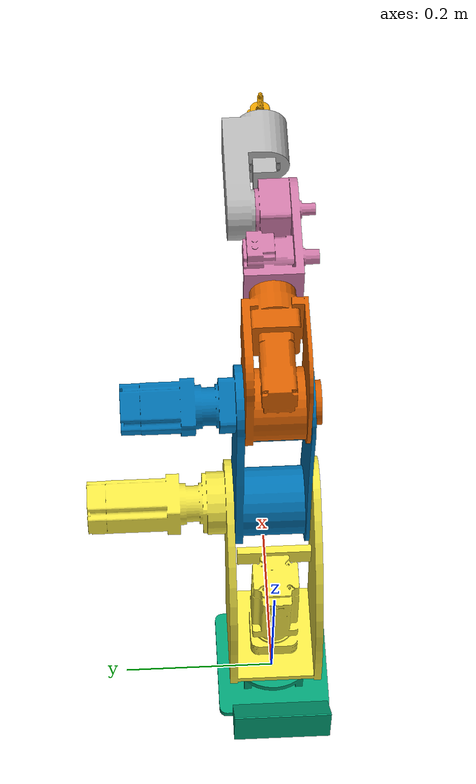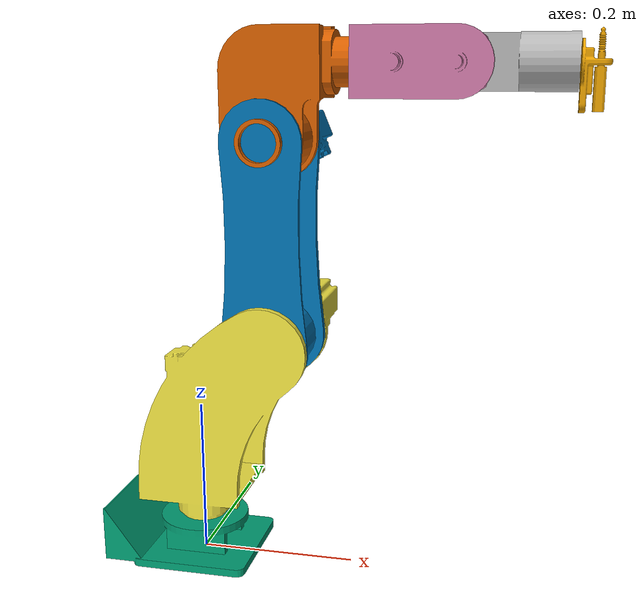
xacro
<?xml version="1.0"?>
<robot name="robot" xmlns:xacro="http://www.ros.org/wiki/xacro">

  <!-- ________________ DEFINE LINK ________________________________________________________________________ -->
  <!-- World Frame -->
  <link name  ="world"/>
  <link name  ="tcp_link"/>
  <!-- Link 0 - Base -->
  <link name  ="base_link">
    <inertial>
      <origin xyz ="-0.00544954615598158 0.000157418519134474 0.00564099250157026" rpy="0 0 0" />
      <mass value ="1.78696933370067" />
      <inertia
              ixx ="0.00334289861376234"
              ixy ="-2.39019225970563E-07"
              ixz ="7.11788112309683E-06"
              iyy ="0.0031863560397784"
              iyz ="-2.78684112590384E-06"
              izz ="0.00645191220467659" />
    </inertial>
    <visual>
      <origin xyz ="0 0 0" rpy  ="0 0 0" />
      <geometry>
        <mesh filename  ="package://robot_description/meshes/base_link.stl" />
      </geometry>
      <material   name  ="base_link"></material>
    </visual>
    <collision>
      <origin xyz ="0 0 0" rpy ="0 0 0" />
      <geometry>
        <mesh filename  ="package://robot_description/meshes/dae/base_link.dae" />
      </geometry>
    </collision>
  </link>
  <!-- Link 1 -->
  <link name  ="link_1">
    <inertial>
      <origin   xyz  ="0.0193443558112907 0.0109921802765565 0.0924758072620357" rpy="0 0 0" />
      <mass   value  ="5.50396042361908" />
      <inertia
                ixx ="0.0130037829993516"
                ixy ="3.49214734799824E-09"
                ixz ="-0.00313572650782407"
                iyy ="0.0174211851360363"
                iyz ="-2.33013746145458E-06"
                izz ="0.0140359346087906" />
    </inertial>
    <visual>
      <origin xyz ="0 0 0" rpy  ="0 0 0" />
      <geometry>
        <mesh filename  ="package://robot_description/meshes/link_1.stl" />
      </geometry>
      <material   name  ="link_1"></material>
    </visual>
    <collision>
      <origin xyz ="0 0 0" rpy ="0 0 0" />
      <geometry>
        <mesh filename  ="package://robot_description/meshes/dae/link_1.dae" />
      </geometry>
    </collision>
  </link>
    <!-- Link 2 -->
  <link name="link_2">
    <inertial>
      <origin xyz ="0.095965941991434 0.000112006139674839 -0.0319594915411429"  rpy="0 0 0" />
      <mass value ="2.68614147040981" />
      <inertia
              ixx ="0.00216208190226954"
              ixy ="7.03906699411074E-07"
              ixz ="1.9470092472916E-06"
              iyy ="0.0110452906557092"
              iyz ="-1.43932327786374E-06"
              izz ="0.0125902837214324" />
    </inertial>
    <visual>
      <origin xyz="0 0 0" rpy="0 0 0" />
      <geometry>
        <mesh   filename ="package://robot_description/meshes/link_2.stl" />
      </geometry>
      <material     name  ="link_2"></material>
    </visual>
    <collision>
      <origin xyz ="0 0 0" rpy ="0 0 0" />
      <geometry>
        <mesh filename  ="package://robot_description/meshes/dae/link_2.dae" />
      </geometry>
    </collision>
  </link>
    <!-- Link 3 -->
  <link  name="link_3">
    <inertial>
      <origin xyz ="0.0315400667409967 -0.0522316930638639 -0.0372996788949479" rpy="0 0 0" />
      <mass value ="2.69379315969066" />
      <inertia
              ixx ="0.00297065150537785"
              ixy ="0.000173737882412212"
              ixz ="1.08004336423003E-07"
              iyy ="0.0019143128411473"
              iyz ="4.2036787275891E-06"
              izz ="0.0039181139326064" />
    </inertial>
    <visual>
      <origin  xyz="0 0 0" rpy="0 0 0" />
      <geometry>
        <mesh  filename="package://robot_description/meshes/link_3.stl" />
      </geometry>
      <material name="link_3"></material>
    </visual>
    <collision>
      <origin xyz ="0 0 0" rpy ="0 0 0" />
      <geometry>
        <mesh filename  ="package://robot_description/meshes/dae/link_3.dae" />
      </geometry>
    </collision>
  </link>
    <!-- Link 4 -->
  <link  name="link_4">
    <inertial>
      <origin xyz ="0.00868566509472264 -0.000351062944789704 0.0358084533663054" rpy="0 0 0" />
      <mass value ="1.80796623919651" />
      <inertia
              ixx ="0.00163140667717977"
              ixy ="-1.5364988555156E-06"
              ixz ="-1.21111109518308E-05"
              iyy ="0.00126669781876782"
              iyz ="-8.97475562349671E-07"
              izz ="0.0010711724867268" />
    </inertial>
    <visual>
      <origin xyz="0 0 0"  rpy="0 0 0" />
      <geometry>
        <mesh filename="package://robot_description/meshes/link_4.stl" />
      </geometry>
      <material name="link_4"></material>
    </visual>
    <collision>
      <origin xyz ="0 0 0" rpy ="0 0 0" />
      <geometry>
        <mesh filename  ="package://robot_description/meshes/dae/link_4.dae" />
      </geometry>
    </collision>
  </link>
    <!-- Link 5 -->
  <link  name="link_5">
    <inertial>
      <origin xyz ="0.0674634334441427 5.73631023903509E-05 0.00771105147453628" rpy="0 0 0" />
      <mass value ="0.367372399298886" />
      <inertia
              ixx ="0.000203467788892474"
              ixy ="-4.31988988741858E-07"
              ixz ="-2.92876701433074E-05"
              iyy ="0.000404007801086554"
              iyz ="-9.06114097030996E-09"
              izz ="0.000453819777422173" />
    </inertial>
    <visual>
      <origin xyz="0 0 0" rpy="0 0 0" />
      <geometry>
        <mesh filename  ="package://robot_description/meshes/link_5.stl" />
      </geometry>
      <material   name  ="link_5"></material>
    </visual>
    <collision>
      <origin xyz ="0 0 0" rpy ="0 0 0" />
      <geometry>
        <mesh filename  ="package://robot_description/meshes/dae/link_5.dae" />
      </geometry>
    </collision>
  </link>
    <!-- Link 6 -->
  <link  name="link_6">
    <inertial>
      <origin xyz ="-3.2560015697054E-06 -3.69429945190625E-07 -0.000227999228200271" rpy="0 0 0" />
      <mass value ="0.0760881236172958" />
      <inertia
              ixx ="1.0689375645495E-05"
              ixy ="1.29742190426518E-07"
              ixz ="-4.13087402822219E-09"
              iyy ="6.01775641263719E-05"
              iyz ="-8.47409888919864E-11"
              izz ="6.20472722814015E-05" />
    </inertial>
    <visual>
      <origin xyz ="0 0 0" rpy  ="0 0 ${pi}" />
      <geometry>
        <mesh filename  ="package://robot_description/meshes/tcp_xy.stl" />
      </geometry>
      <material   name  ="tool_flange"></material>
    </visual>
    <collision>
      <origin xyz ="0 0 0" rpy ="0 0 0" />
      <geometry>
        <mesh filename  ="package://robot_description/meshes/tcp_xy.stl" />
      </geometry>
    </collision>
  </link>
      <!-- gripper_l -->
  <link
    name="gripper_l">
    <inertial>
      <origin xyz ="0.00529765879587146 -3.88578058618805E-15 0.0107662645329267"  rpy="0 0 0" />
      <mass value ="0.00341226263656414" />
      <inertia
              ixx ="2.87010460865535E-07"
              ixy ="-2.57160585374973E-20"
              ixz ="5.98935002113914E-08"
              iyy ="2.9830566445971E-07"
              iyz ="3.31197444456193E-19"
              izz ="1.33685846407215E-07" />
    </inertial>
    <visual>
      <origin xyz ="0 0 0" rpy  ="0 0 0" />
      <geometry>
        <mesh filename  ="package://robot_description/meshes/gripper_l.stl" />
      </geometry>
      <material   name  ="gripper_l"></material>
    </visual>
    <collision>
      <origin xyz ="0 0 0" rpy ="0 0 0" />
      <geometry>
        <mesh filename  ="package://robot_description/meshes/dae/gripper_l.dae" />
      </geometry>
    </collision>
  </link>
    <!-- gripper_r -->
  <link name="gripper_r">
    <inertial>
      <origin xyz ="0.00529765879587152 -3.88578058618805E-15 0.0107662645329266" rpy="0 0 0" />
      <mass value ="0.00341226263656414" />
      <inertia
              ixx ="2.87010460865533E-07"
              ixy ="-2.59872111438333E-20"
              ixz ="5.98935002113914E-08"
              iyy ="2.98305664459708E-07"
              iyz ="3.31020394390284E-19"
              izz ="1.33685846407216E-07" />
    </inertial>
    <visual>
      <origin xyz ="0 0 0" rpy  ="0 0 0" />
      <geometry>
        <mesh filename  ="package://robot_description/meshes/gripper_r.stl" />
      </geometry>
      <material   name  ="gripper_r"></material>
    </visual>
    <collision>
      <origin xyz ="0 0 0" rpy ="0 0 0" />
      <geometry>
        <mesh filename  ="package://robot_description/meshes/dae/gripper_r.dae" />
      </geometry>
    </collision>
  </link>
  <!-- ________________ DEFINE JOINT ________________________________________________________________________ -->
  <!-- World-Base Joint -->
  <joint    name  ="virtual_joint"         type      ="fixed">
    <origin xyz   ="0 0 0"                 rpy       ="0 0 0"/>
    <parent link  ="world"/>
    <child  link  ="base_link"/>
  </joint>
  <joint    name  ="tcp_joint"             type      ="fixed">
    <origin xyz   ="0 0.036 0.021"              rpy       ="0 0 0"/>
    <parent link  ="link_6"/>
    <child  link  ="tcp_link"/>
  </joint>
  <!-- JOINT 1 -->
  <joint    name  ="joint_1"               type      ="revolute">
    <origin xyz   ="0 0 0.05"              rpy       ="0 0 0" />
    <parent link  ="base_link" />
    <child  link  ="link_1" />
    <axis   xyz   ="0 0 1" />
    <limit  lower ="-2.0943"               upper     ="2.0943"
            effort="1000"                  velocity  ="1.0" />
  </joint>
  <!-- JOINT 2 -->
  <joint    name  ="joint_2"               type      ="revolute">
    <origin xyz   ="0.1 0.04 0.24313"      rpy       ="${-pi/2} ${-pi/2} 0" />
    <parent link  ="link_1" />
    <child  link  ="link_2" />
    <axis   xyz   ="0 0 1" />
    <limit  lower ="-1.5707"               upper     ="2.6179"
            effort="1000"                  velocity  ="1.0" />
  </joint>
  <!-- JOINT 3 -->
  <joint    name  ="joint_3"               type      ="revolute">
    <origin xyz   ="0.25 0 0.0"          rpy       ="0 0 ${pi/2}" />
    <parent link  ="link_2" />
    <child  link  ="link_3" />
    <axis   xyz   ="0 0 1" />
    <limit  lower ="-1.5707"               upper     ="1.5707"
            effort="1000"                  velocity  ="1.0" />
  </joint>
  <!-- JOINT 4 -->
  <joint    name  ="joint_4"               type    ="revolute">
    <origin xyz   ="0.103 -0.09 -0.04"     rpy     ="0 ${pi/2} 0" />
    <parent link  ="link_3" />
    <child  link  ="link_4" />
    <axis   xyz   ="0 0 1" />
    <limit  lower ="-1.5707"               upper     ="1.5707"
            effort="1000"                  velocity  ="2.0" />
  </joint>
  <!-- JOINT 5 -->
  <joint    name  ="joint_5"               type    ="revolute">
    <origin xyz   ="-0.05 0 0.12"        rpy     ="${pi} ${-pi/2} ${pi}" />
    <parent link  ="link_4" />
    <child  link  ="link_5" />
    <axis   xyz   ="0 0 1" />
    <limit  lower ="-1.5707"               upper    ="1.5707"
            effort="1000"                  velocity ="2.0" />
  </joint>
  <!-- JOINT 6 -->
  <joint    name  ="joint_6"               type    ="revolute">
    <origin xyz   ="0.132 0 -0.05"      rpy     ="0 ${-pi/2} ${pi}" />
    <parent link  ="link_5" />
    <child  link  ="link_6" />
    <axis   xyz   ="0 0 1" />
    <limit  lower ="-3.14159"               upper     ="3.14159"
            effort="1000"                  velocity  ="2.0" />
  </joint>
  <!-- joint_gl -->
  <joint    name  ="joint_gl"              type      ="prismatic">
    <origin xyz   ="0.0021 0 -0.0668"       rpy       ="0 0 0" />
    <parent link  ="link_6" />
    <child  link  ="gripper_l" />
    <axis   xyz   ="1 0 0" />
    <limit  lower ="-0.001"                upper     ="0.02"
            effort="50"                    velocity  ="0.05" />
  </joint>
  <!-- joint_gr -->
  <joint    name  ="joint_gr"              type      ="prismatic">
    <origin xyz   ="-0.0021 0 -0.0668"      rpy       ="0 0 ${pi}" />
    <parent link  ="link_6" />
    <child  link  ="gripper_r" />
    <axis   xyz   ="1 0 0" />
    <limit  lower ="-0.001"                upper     ="0.02"
            effort="50"                    velocity  ="0.05" />
  </joint>

  <gazebo reference="gripper_l">
    <mu1>         1000.0</mu1>
    <mu2>         1000.0</mu2>
    <kp>          1000000.0</kp>
    <kd>          1.0</kd>
    <minDepth>    0.001</minDepth>
    <maxVel>      0.1</maxVel>
    <selfCollide> false</selfCollide>
    <material>    Gazebo/Grey</material>
  </gazebo>

  <gazebo reference="gripper_r">
    <mu1>         1000.0</mu1>
    <mu2>         1000.0</mu2>
    <kp>          1000000.0</kp>
    <kd>          1.0</kd>
    <minDepth>    0.001</minDepth>
    <maxVel>      0.1</maxVel>
    <selfCollide> false</selfCollide>
    <material>    Gazebo/Grey</material>
  </gazebo>
</robot>
